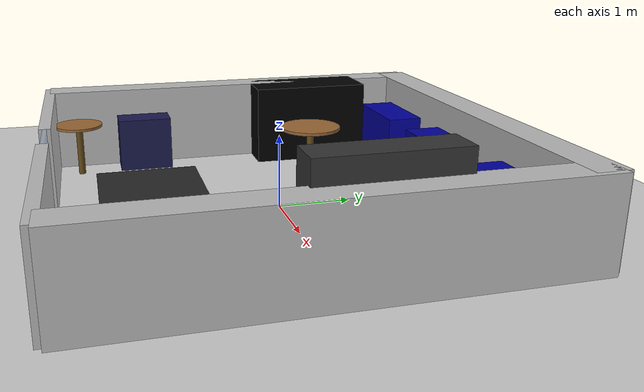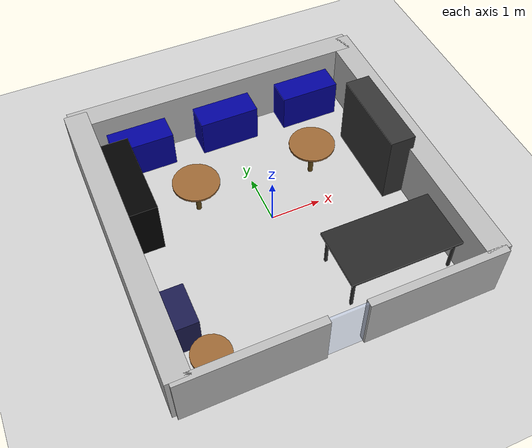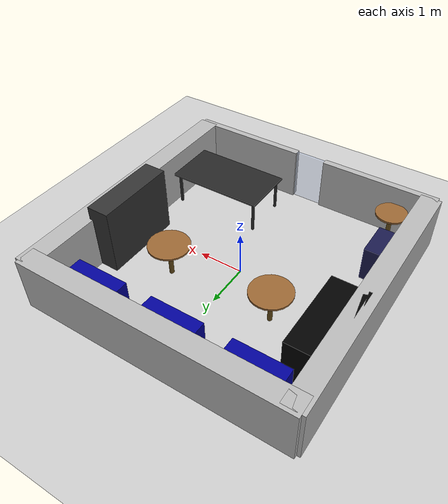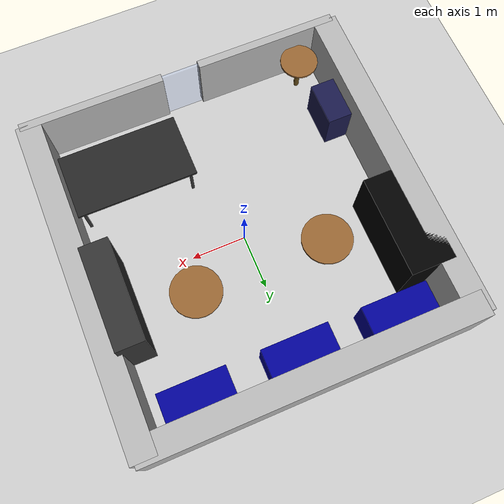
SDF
<sdf version='1.7'>
  <world name='default'>
    <!-- PHYSIQUE ET LUMIÈRE -->
    <light name='sun' type='directional'>
      <cast_shadows>1</cast_shadows>
      <pose>0 0 10 0 -0 0</pose>
      <diffuse>0.8 0.8 0.8 1</diffuse>
      <specular>0.2 0.2 0.2 1</specular>
      <direction>-0.5 0.1 -0.9</direction>
    </light>

    <model name='ground_plane'>
      <static>1</static>
      <link name='link'>
        <collision name='collision'>
          <geometry><plane><normal>0 0 1</normal><size>100 100</size></plane></geometry>
        </collision>
        <visual name='visual'>
          <geometry><plane><normal>0 0 1</normal><size>100 100</size></plane></geometry>
          <material><script><uri>file://media/materials/scripts/gazebo.material</uri><name>Gazebo/Grey</name></script></material>
        </visual>
      </link>
    </model>

    <physics type='ode'>
      <max_step_size>0.001</max_step_size>
      <real_time_factor>1</real_time_factor>
      <real_time_update_rate>1000</real_time_update_rate>
    </physics>

    <model name='labo_final_ajuste'>
      <static>1</static>
      <pose>0 0 0 0 -0 0</pose>

      <!-- MURS -->
      <link name='wall_nord'><pose>0 2.85 0.6 0 -0 0</pose><visual name='v'><geometry><box><size>6 0.45 1.2</size></box></geometry></visual><collision name='c'><geometry><box><size>6 0.45 1.2</size></box></geometry></collision></link>
      <link name='wall_est'><pose>2.85 0 0.6 0 -0 1.57</pose><visual name='v'><geometry><box><size>6 0.45 1.2</size></box></geometry></visual><collision name='c'><geometry><box><size>6 0.45 1.2</size></box></geometry></collision></link>
      <link name='wall_ouest'><pose>-2.85 0 0.6 0 -0 1.57</pose><visual name='v'><geometry><box><size>6 0.45 1.2</size></box></geometry></visual><collision name='c'><geometry><box><size>6 0.45 1.2</size></box></geometry></collision></link>
      <link name='wall_sud_gauche'><pose>-1.675 -3 0.6 0 -0 0</pose><visual name='v'><geometry><box><size>2.65 0.15 1.2</size></box></geometry></visual><collision name='c'><geometry><box><size>2.65 0.15 1.2</size></box></geometry></collision></link>
      <link name='wall_sud_droit'><pose>1.675 -3 0.6 0 -0 0</pose><visual name='v'><geometry><box><size>2.65 0.15 1.2</size></box></geometry></visual><collision name='c'><geometry><box><size>2.65 0.15 1.2</size></box></geometry></collision></link>

      <link name='porte_entree'>
        <pose>0 -3 0.6 0 -0 0</pose>
        <visual name='v'><geometry><box><size>0.7 0.05 1.2</size></box></geometry><material><ambient>0.7 0.8 1.0 0.3</ambient></material></visual>
      </link>

      <!-- MOBILIER -->
      <link name='poste_1'><pose>-1.8 2.45 0.4 0 -0 0</pose><visual name='v'><geometry><box><size>1.2 0.7 0.8</size></box></geometry><material><ambient>0 0 0.6 1</ambient></material></visual><collision name='c'><geometry><box><size>1.2 0.7 0.8</size></box></geometry></collision></link>
      <link name='poste_2'><pose>0 2.45 0.4 0 -0 0</pose><visual name='v'><geometry><box><size>1.2 0.7 0.8</size></box></geometry><material><ambient>0 0 0.6 1</ambient></material></visual><collision name='c'><geometry><box><size>1.2 0.7 0.8</size></box></geometry></collision></link>
      <link name='poste_3'><pose>1.8 2.45 0.4 0 -0 0</pose><visual name='v'><geometry><box><size>1.2 0.7 0.8</size></box></geometry><material><ambient>0 0 0.6 1</ambient></material></visual><collision name='c'><geometry><box><size>1.2 0.7 0.8</size></box></geometry></collision></link>

      <link name='box_noir'><pose>-2.5 1.1 0.6 0 -0 0</pose><visual name='v'><geometry><box><size>0.8 1.8 1.2</size></box></geometry><material><ambient>0 0 0 1</ambient></material></visual><collision name='c'><geometry><box><size>0.8 1.8 1.2</size></box></geometry></collision></link>
      <link name='meuble_droite'><pose>2.45 0.5 0.75 0 -0 0</pose><visual name='v'><geometry><box><size>0.5 1.8 1.5</size></box></geometry><material><ambient>0.2 0.2 0.2 1</ambient></material></visual><collision name='c'><geometry><box><size>0.5 1.8 1.5</size></box></geometry></collision></link>
      <link name='bureau_pc_bas'><pose>-2.55 -1.6 0.4 0 -0 0</pose><visual name='v'><geometry><box><size>0.75 0.8 0.8</size></box></geometry><material><ambient>0.1 0.1 0.3 1</ambient></material></visual><collision name='c'><geometry><box><size>0.75 0.8 0.8</size></box></geometry></collision></link>

      <!-- TABLES RONDES - cylindres pleins du sol au plateau (hauteur totale 0.79m) -->
      <!-- Le lidar à 0.15m voit maintenant le cylindre plein, pas juste un pied de 5cm -->
      <link name='table_ronde_1'>
        <pose>-1.2 0.8 0 0 -0 0</pose>
        <!-- Plateau visible en haut -->
        <visual name='plateau'>
          <pose>0 0 0.77 0 0 0</pose>
          <geometry><cylinder><radius>0.45</radius><length>0.04</length></cylinder></geometry>
          <material><ambient>0.6 0.4 0.2 1</ambient></material>
        </visual>
        <!-- Pied visible (décoratif) -->
        <visual name='pied'>
          <pose>0 0 0.38 0 0 0</pose>
          <geometry><cylinder><radius>0.05</radius><length>0.75</length></cylinder></geometry>
          <material><ambient>0.4 0.3 0.1 1</ambient></material>
        </visual>
        <!-- Collision pleine = cylindre du sol au plateau, lidar le voit à 0.15m -->
        <collision name='c_plein'>
          <pose>0 0 0.38 0 0 0</pose>
          <geometry><cylinder><radius>0.45</radius><length>0.75</length></cylinder></geometry>
        </collision>
      </link>

      <link name='table_ronde_2'>
        <pose>1.2 0.8 0 0 -0 0</pose>
        <visual name='plateau'>
          <pose>0 0 0.77 0 0 0</pose>
          <geometry><cylinder><radius>0.45</radius><length>0.04</length></cylinder></geometry>
          <material><ambient>0.6 0.4 0.2 1</ambient></material>
        </visual>
        <visual name='pied'>
          <pose>0 0 0.38 0 0 0</pose>
          <geometry><cylinder><radius>0.05</radius><length>0.75</length></cylinder></geometry>
          <material><ambient>0.4 0.3 0.1 1</ambient></material>
        </visual>
        <collision name='c_plein'>
          <pose>0 0 0.38 0 0 0</pose>
          <geometry><cylinder><radius>0.45</radius><length>0.75</length></cylinder></geometry>
        </collision>
      </link>

      <link name='table_ronde_bas'>
        <pose>-2.2 -2.6 0 0 -0 0</pose>
        <visual name='plateau'>
          <pose>0 0 0.77 0 0 0</pose>
          <geometry><cylinder><radius>0.35</radius><length>0.04</length></cylinder></geometry>
          <material><ambient>0.6 0.4 0.2 1</ambient></material>
        </visual>
        <visual name='pied'>
          <pose>0 0 0.38 0 0 0</pose>
          <geometry><cylinder><radius>0.05</radius><length>0.75</length></cylinder></geometry>
          <material><ambient>0.4 0.3 0.1 1</ambient></material>
        </visual>
        <collision name='c_plein'>
          <pose>0 0 0.38 0 0 0</pose>
          <geometry><cylinder><radius>0.35</radius><length>0.75</length></cylinder></geometry>
        </collision>
      </link>

      <!-- GRANDE TABLE RECTANGULAIRE - boîte pleine du sol au plateau -->
      <link name='table_cours_principale'>
        <pose>1.5 -1.8 0 0 -0 0</pose>
        <visual name='plateau'>
          <pose>0 0 0.77 0 0 0</pose>
          <geometry><box><size>2.2 1.2 0.05</size></box></geometry>
          <material><ambient>0.15 0.15 0.15 1</ambient></material>
        </visual>
        <!-- Pieds décoratifs visibles -->
        <visual name='pied1'><pose>1.0  0.5 0.38 0 0 0</pose><geometry><box><size>0.05 0.05 0.75</size></box></geometry><material><ambient>0.2 0.2 0.2 1</ambient></material></visual>
        <visual name='pied2'><pose>-1.0  0.5 0.38 0 0 0</pose><geometry><box><size>0.05 0.05 0.75</size></box></geometry><material><ambient>0.2 0.2 0.2 1</ambient></material></visual>
        <visual name='pied3'><pose>1.0 -0.5 0.38 0 0 0</pose><geometry><box><size>0.05 0.05 0.75</size></box></geometry><material><ambient>0.2 0.2 0.2 1</ambient></material></visual>
        <visual name='pied4'><pose>-1.0 -0.5 0.38 0 0 0</pose><geometry><box><size>0.05 0.05 0.75</size></box></geometry><material><ambient>0.2 0.2 0.2 1</ambient></material></visual>
        <!-- Collision pleine = boîte du sol au plateau, lidar la voit à 0.15m -->
        <collision name='c_plein'>
          <pose>0 0 0.38 0 0 0</pose>
          <geometry><box><size>2.2 1.2 0.75</size></box></geometry>
        </collision>
      </link>
    </model>

    <gui fullscreen='0'><camera name='user_camera'><pose>0 0 12 0 1.57 1.57</pose></camera></gui>
  </world>
</sdf>
